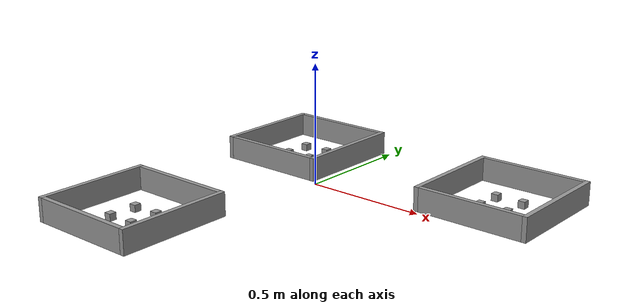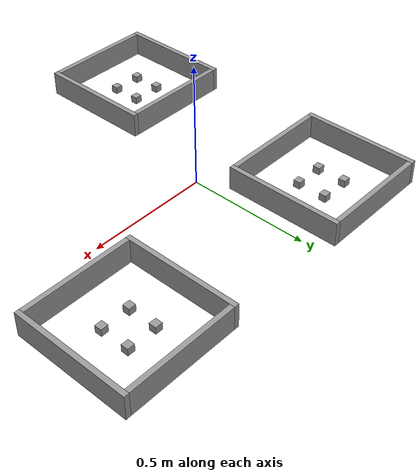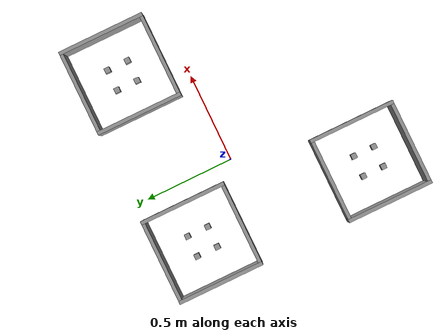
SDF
<sdf version="1.6">
 <model name="Catch_model">
  <link name="link_0">
   <inertial>
    <mass>1</mass>
    <inertia>
     <ixx>0.166667</ixx>
     <ixy>0</ixy>
     <ixz>0</ixz>
     <iyy>0.166667</iyy>
     <iyz>0</iyz>
     <izz>0.166667</izz>
    </inertia>
   </inertial>
   <pose>-0.568333 -0.666667 0.0175 0 -0 0</pose>
   <visual name="visual">
    <geometry><box><size>0.02 0.49 0.1</size></box></geometry>
    <material>
     <lighting>1</lighting>
     <script><uri>file://media/materials/scripts/gazebo.material</uri><name>Gazebo/Grey</name></script>
     <shader type="vertex"><normal_map>__default__</normal_map></shader>
     <ambient>0.3 0.3 0.3 1</ambient>
     <diffuse>0.7 0.7 0.7 1</diffuse>
     <specular>0.01 0.01 0.01 1</specular>
     <emissive>0 0 0 1</emissive>
    </material>
   </visual>
   <collision name="collision">
    <geometry><box><size>0.02 0.49 0.1</size></box></geometry>
    <surface>
     <friction>
      <ode><mu>1</mu><mu2>1</mu2><fdir1>0 0 0</fdir1><slip1>0</slip1><slip2>0</slip2></ode>
      <torsional>
       <coefficient>1</coefficient>
       <patch_radius>0</patch_radius>
       <surface_radius>0</surface_radius>
       <use_patch_radius>1</use_patch_radius>
       <ode><slip>0</slip></ode>
      </torsional>
     </friction>
     <bounce><restitution_coefficient>0</restitution_coefficient><threshold>1e+06</threshold></bounce>
     <contact>
      <collide_without_contact>0</collide_without_contact>
      <collide_without_contact_bitmask>1</collide_without_contact_bitmask>
      <collide_bitmask>1</collide_bitmask>
      <ode>
       <soft_cfm>0</soft_cfm>
       <soft_erp>0.2</soft_erp>
       <kp>1e+13</kp>
       <kd>1</kd>
       <max_vel>0.01</max_vel>
       <min_depth>0</min_depth>
      </ode>
      <bullet>
       <split_impulse>1</split_impulse>
       <split_impulse_penetration_threshold>-0.01</split_impulse_penetration_threshold>
       <soft_cfm>0</soft_cfm>
       <soft_erp>0.2</soft_erp>
       <kp>1e+13</kp>
       <kd>1</kd>
      </bullet>
     </contact>
    </surface>
   </collision>
  </link>
  <link name="link_0_clone">
   <inertial>
    <mass>1</mass>
    <inertia>
     <ixx>0.166667</ixx>
     <ixy>0</ixy>
     <ixz>0</ixz>
     <iyy>0.166667</iyy>
     <iyz>0</iyz>
     <izz>0.166667</izz>
    </inertia>
   </inertial>
   <pose>-0.098333 -0.666667 0.0175 0 -0 0</pose>
   <visual name="visual">
    <geometry><box><size>0.02 0.49 0.1</size></box></geometry>
    <material>
     <lighting>1</lighting>
     <script><uri>file://media/materials/scripts/gazebo.material</uri><name>Gazebo/Grey</name></script>
     <shader type="vertex"><normal_map>__default__</normal_map></shader>
     <ambient>0.3 0.3 0.3 1</ambient>
     <diffuse>0.7 0.7 0.7 1</diffuse>
     <specular>0.01 0.01 0.01 1</specular>
     <emissive>0 0 0 1</emissive>
    </material>
   </visual>
   <collision name="collision">
    <geometry><box><size>0.02 0.49 0.1</size></box></geometry>
    <surface>
     <friction>
      <ode><mu>1</mu><mu2>1</mu2><fdir1>0 0 0</fdir1><slip1>0</slip1><slip2>0</slip2></ode>
      <torsional>
       <coefficient>1</coefficient>
       <patch_radius>0</patch_radius>
       <surface_radius>0</surface_radius>
       <use_patch_radius>1</use_patch_radius>
       <ode><slip>0</slip></ode>
      </torsional>
     </friction>
     <bounce><restitution_coefficient>0</restitution_coefficient><threshold>1e+06</threshold></bounce>
     <contact>
      <collide_without_contact>0</collide_without_contact>
      <collide_without_contact_bitmask>1</collide_without_contact_bitmask>
      <collide_bitmask>1</collide_bitmask>
      <ode>
       <soft_cfm>0</soft_cfm>
       <soft_erp>0.2</soft_erp>
       <kp>1e+13</kp>
       <kd>1</kd>
       <max_vel>0.01</max_vel>
       <min_depth>0</min_depth>
      </ode>
      <bullet>
       <split_impulse>1</split_impulse>
       <split_impulse_penetration_threshold>-0.01</split_impulse_penetration_threshold>
       <soft_cfm>0</soft_cfm>
       <soft_erp>0.2</soft_erp>
       <kp>1e+13</kp>
       <kd>1</kd>
      </bullet>
     </contact>
    </surface>
   </collision>
  </link>
  <link name="link_0_clone_0">
   <inertial>
    <mass>1</mass>
    <inertia>
     <ixx>0.166667</ixx>
     <ixy>0</ixy>
     <ixz>0</ixz>
     <iyy>0.166667</iyy>
     <iyz>0</iyz>
     <izz>0.166667</izz>
    </inertia>
   </inertial>
   <pose>-0.098333 0.333333 0.0175 0 -0 0</pose>
   <visual name="visual">
    <geometry><box><size>0.02 0.49 0.1</size></box></geometry>
    <material>
     <lighting>1</lighting>
     <script><uri>file://media/materials/scripts/gazebo.material</uri><name>Gazebo/Grey</name></script>
     <shader type="vertex"><normal_map>__default__</normal_map></shader>
     <ambient>0.3 0.3 0.3 1</ambient>
     <diffuse>0.7 0.7 0.7 1</diffuse>
     <specular>0.01 0.01 0.01 1</specular>
     <emissive>0 0 0 1</emissive>
    </material>
   </visual>
   <collision name="collision">
    <geometry><box><size>0.02 0.49 0.1</size></box></geometry>
    <surface>
     <friction>
      <ode><mu>1</mu><mu2>1</mu2><fdir1>0 0 0</fdir1><slip1>0</slip1><slip2>0</slip2></ode>
      <torsional>
       <coefficient>1</coefficient>
       <patch_radius>0</patch_radius>
       <surface_radius>0</surface_radius>
       <use_patch_radius>1</use_patch_radius>
       <ode><slip>0</slip></ode>
      </torsional>
     </friction>
     <bounce><restitution_coefficient>0</restitution_coefficient><threshold>1e+06</threshold></bounce>
     <contact>
      <collide_without_contact>0</collide_without_contact>
      <collide_without_contact_bitmask>1</collide_without_contact_bitmask>
      <collide_bitmask>1</collide_bitmask>
      <ode>
       <soft_cfm>0</soft_cfm>
       <soft_erp>0.2</soft_erp>
       <kp>1e+13</kp>
       <kd>1</kd>
       <max_vel>0.01</max_vel>
       <min_depth>0</min_depth>
      </ode>
      <bullet>
       <split_impulse>1</split_impulse>
       <split_impulse_penetration_threshold>-0.01</split_impulse_penetration_threshold>
       <soft_cfm>0</soft_cfm>
       <soft_erp>0.2</soft_erp>
       <kp>1e+13</kp>
       <kd>1</kd>
      </bullet>
     </contact>
    </surface>
   </collision>
  </link>
  <link name="link_0_clone_1">
   <inertial>
    <mass>1</mass>
    <inertia>
     <ixx>0.166667</ixx>
     <ixy>0</ixy>
     <ixz>0</ixz>
     <iyy>0.166667</iyy>
     <iyz>0</iyz>
     <izz>0.166667</izz>
    </inertia>
   </inertial>
   <pose>-0.568333 0.333333 0.0175 0 -0 0</pose>
   <visual name="visual">
    <geometry><box><size>0.02 0.49 0.1</size></box></geometry>
    <material>
     <lighting>1</lighting>
     <script><uri>file://media/materials/scripts/gazebo.material</uri><name>Gazebo/Grey</name></script>
     <shader type="vertex"><normal_map>__default__</normal_map></shader>
     <ambient>0.3 0.3 0.3 1</ambient>
     <diffuse>0.7 0.7 0.7 1</diffuse>
     <specular>0.01 0.01 0.01 1</specular>
     <emissive>0 0 0 1</emissive>
    </material>
   </visual>
   <collision name="collision">
    <geometry><box><size>0.02 0.49 0.1</size></box></geometry>
    <surface>
     <friction>
      <ode><mu>1</mu><mu2>1</mu2><fdir1>0 0 0</fdir1><slip1>0</slip1><slip2>0</slip2></ode>
      <torsional>
       <coefficient>1</coefficient>
       <patch_radius>0</patch_radius>
       <surface_radius>0</surface_radius>
       <use_patch_radius>1</use_patch_radius>
       <ode><slip>0</slip></ode>
      </torsional>
     </friction>
     <bounce><restitution_coefficient>0</restitution_coefficient><threshold>1e+06</threshold></bounce>
     <contact>
      <collide_without_contact>0</collide_without_contact>
      <collide_without_contact_bitmask>1</collide_without_contact_bitmask>
      <collide_bitmask>1</collide_bitmask>
      <ode>
       <soft_cfm>0</soft_cfm>
       <soft_erp>0.2</soft_erp>
       <kp>1e+13</kp>
       <kd>1</kd>
       <max_vel>0.01</max_vel>
       <min_depth>0</min_depth>
      </ode>
      <bullet>
       <split_impulse>1</split_impulse>
       <split_impulse_penetration_threshold>-0.01</split_impulse_penetration_threshold>
       <soft_cfm>0</soft_cfm>
       <soft_erp>0.2</soft_erp>
       <kp>1e+13</kp>
       <kd>1</kd>
      </bullet>
     </contact>
    </surface>
   </collision>
  </link>
  <link name="link_0_clone_2">
   <inertial>
    <mass>1</mass>
    <inertia>
     <ixx>0.166667</ixx>
     <ixy>0</ixy>
     <ixz>0</ixz>
     <iyy>0.166667</iyy>
     <iyz>0</iyz>
     <izz>0.166667</izz>
    </inertia>
   </inertial>
   <pose>0.431667 0.333333 0.0175 0 -0 0</pose>
   <visual name="visual">
    <geometry><box><size>0.02 0.49 0.1</size></box></geometry>
    <material>
     <lighting>1</lighting>
     <script><uri>file://media/materials/scripts/gazebo.material</uri><name>Gazebo/Grey</name></script>
     <shader type="vertex"><normal_map>__default__</normal_map></shader>
     <ambient>0.3 0.3 0.3 1</ambient>
     <diffuse>0.7 0.7 0.7 1</diffuse>
     <specular>0.01 0.01 0.01 1</specular>
     <emissive>0 0 0 1</emissive>
    </material>
   </visual>
   <collision name="collision">
    <geometry><box><size>0.02 0.49 0.1</size></box></geometry>
    <surface>
     <friction>
      <ode><mu>1</mu><mu2>1</mu2><fdir1>0 0 0</fdir1><slip1>0</slip1><slip2>0</slip2></ode>
      <torsional>
       <coefficient>1</coefficient>
       <patch_radius>0</patch_radius>
       <surface_radius>0</surface_radius>
       <use_patch_radius>1</use_patch_radius>
       <ode><slip>0</slip></ode>
      </torsional>
     </friction>
     <bounce><restitution_coefficient>0</restitution_coefficient><threshold>1e+06</threshold></bounce>
     <contact>
      <collide_without_contact>0</collide_without_contact>
      <collide_without_contact_bitmask>1</collide_without_contact_bitmask>
      <collide_bitmask>1</collide_bitmask>
      <ode>
       <soft_cfm>0</soft_cfm>
       <soft_erp>0.2</soft_erp>
       <kp>1e+13</kp>
       <kd>1</kd>
       <max_vel>0.01</max_vel>
       <min_depth>0</min_depth>
      </ode>
      <bullet>
       <split_impulse>1</split_impulse>
       <split_impulse_penetration_threshold>-0.01</split_impulse_penetration_threshold>
       <soft_cfm>0</soft_cfm>
       <soft_erp>0.2</soft_erp>
       <kp>1e+13</kp>
       <kd>1</kd>
      </bullet>
     </contact>
    </surface>
   </collision>
  </link>
  <link name="link_0_clone_3">
   <inertial>
    <mass>1</mass>
    <inertia>
     <ixx>0.166667</ixx>
     <ixy>0</ixy>
     <ixz>0</ixz>
     <iyy>0.166667</iyy>
     <iyz>0</iyz>
     <izz>0.166667</izz>
    </inertia>
   </inertial>
   <pose>0.901667 0.333333 0.0175 0 -0 0</pose>
   <visual name="visual">
    <geometry><box><size>0.02 0.49 0.1</size></box></geometry>
    <material>
     <lighting>1</lighting>
     <script><uri>file://media/materials/scripts/gazebo.material</uri><name>Gazebo/Grey</name></script>
     <shader type="vertex"><normal_map>__default__</normal_map></shader>
     <ambient>0.3 0.3 0.3 1</ambient>
     <diffuse>0.7 0.7 0.7 1</diffuse>
     <specular>0.01 0.01 0.01 1</specular>
     <emissive>0 0 0 1</emissive>
    </material>
   </visual>
   <collision name="collision">
    <geometry><box><size>0.02 0.49 0.1</size></box></geometry>
    <surface>
     <friction>
      <ode><mu>1</mu><mu2>1</mu2><fdir1>0 0 0</fdir1><slip1>0</slip1><slip2>0</slip2></ode>
      <torsional>
       <coefficient>1</coefficient>
       <patch_radius>0</patch_radius>
       <surface_radius>0</surface_radius>
       <use_patch_radius>1</use_patch_radius>
       <ode><slip>0</slip></ode>
      </torsional>
     </friction>
     <bounce><restitution_coefficient>0</restitution_coefficient><threshold>1e+06</threshold></bounce>
     <contact>
      <collide_without_contact>0</collide_without_contact>
      <collide_without_contact_bitmask>1</collide_without_contact_bitmask>
      <collide_bitmask>1</collide_bitmask>
      <ode>
       <soft_cfm>0</soft_cfm>
       <soft_erp>0.2</soft_erp>
       <kp>1e+13</kp>
       <kd>1</kd>
       <max_vel>0.01</max_vel>
       <min_depth>0</min_depth>
      </ode>
      <bullet>
       <split_impulse>1</split_impulse>
       <split_impulse_penetration_threshold>-0.01</split_impulse_penetration_threshold>
       <soft_cfm>0</soft_cfm>
       <soft_erp>0.2</soft_erp>
       <kp>1e+13</kp>
       <kd>1</kd>
      </bullet>
     </contact>
    </surface>
   </collision>
  </link>
  <link name="link_1">
   <inertial>
    <mass>1</mass>
    <inertia>
     <ixx>0.166667</ixx>
     <ixy>0</ixy>
     <ixz>0</ixz>
     <iyy>0.166667</iyy>
     <iyz>0</iyz>
     <izz>0.166667</izz>
    </inertia>
   </inertial>
   <pose>-0.333333 -0.901667 0.0175 0 -0 0</pose>
   <visual name="visual">
    <geometry><box><size>0.45 0.02 0.1</size></box></geometry>
    <material>
     <lighting>1</lighting>
     <script><uri>file://media/materials/scripts/gazebo.material</uri><name>Gazebo/Grey</name></script>
     <shader type="vertex"><normal_map>__default__</normal_map></shader>
     <ambient>0.3 0.3 0.3 1</ambient>
     <diffuse>0.7 0.7 0.7 1</diffuse>
     <specular>0.01 0.01 0.01 1</specular>
     <emissive>0 0 0 1</emissive>
    </material>
   </visual>
   <collision name="collision">
    <geometry><box><size>0.45 0.02 0.1</size></box></geometry>
    <surface>
     <friction>
      <ode><mu>1</mu><mu2>1</mu2><fdir1>0 0 0</fdir1><slip1>0</slip1><slip2>0</slip2></ode>
      <torsional>
       <coefficient>1</coefficient>
       <patch_radius>0</patch_radius>
       <surface_radius>0</surface_radius>
       <use_patch_radius>1</use_patch_radius>
       <ode><slip>0</slip></ode>
      </torsional>
     </friction>
     <bounce><restitution_coefficient>0</restitution_coefficient><threshold>1e+06</threshold></bounce>
     <contact>
      <collide_without_contact>0</collide_without_contact>
      <collide_without_contact_bitmask>1</collide_without_contact_bitmask>
      <collide_bitmask>1</collide_bitmask>
      <ode>
       <soft_cfm>0</soft_cfm>
       <soft_erp>0.2</soft_erp>
       <kp>1e+13</kp>
       <kd>1</kd>
       <max_vel>0.01</max_vel>
       <min_depth>0</min_depth>
      </ode>
      <bullet>
       <split_impulse>1</split_impulse>
       <split_impulse_penetration_threshold>-0.01</split_impulse_penetration_threshold>
       <soft_cfm>0</soft_cfm>
       <soft_erp>0.2</soft_erp>
       <kp>1e+13</kp>
       <kd>1</kd>
      </bullet>
     </contact>
    </surface>
   </collision>
  </link>
  <link name="link_1_clone">
   <inertial>
    <mass>1</mass>
    <inertia>
     <ixx>0.166667</ixx>
     <ixy>0</ixy>
     <ixz>0</ixz>
     <iyy>0.166667</iyy>
     <iyz>0</iyz>
     <izz>0.166667</izz>
    </inertia>
   </inertial>
   <pose>-0.333333 -0.431667 0.0175 0 -0 0</pose>
   <visual name="visual">
    <geometry><box><size>0.45 0.02 0.1</size></box></geometry>
    <material>
     <lighting>1</lighting>
     <script><uri>file://media/materials/scripts/gazebo.material</uri><name>Gazebo/Grey</name></script>
     <shader type="vertex"><normal_map>__default__</normal_map></shader>
     <ambient>0.3 0.3 0.3 1</ambient>
     <diffuse>0.7 0.7 0.7 1</diffuse>
     <specular>0.01 0.01 0.01 1</specular>
     <emissive>0 0 0 1</emissive>
    </material>
   </visual>
   <collision name="collision">
    <geometry><box><size>0.45 0.02 0.1</size></box></geometry>
    <surface>
     <friction>
      <ode><mu>1</mu><mu2>1</mu2><fdir1>0 0 0</fdir1><slip1>0</slip1><slip2>0</slip2></ode>
      <torsional>
       <coefficient>1</coefficient>
       <patch_radius>0</patch_radius>
       <surface_radius>0</surface_radius>
       <use_patch_radius>1</use_patch_radius>
       <ode><slip>0</slip></ode>
      </torsional>
     </friction>
     <bounce><restitution_coefficient>0</restitution_coefficient><threshold>1e+06</threshold></bounce>
     <contact>
      <collide_without_contact>0</collide_without_contact>
      <collide_without_contact_bitmask>1</collide_without_contact_bitmask>
      <collide_bitmask>1</collide_bitmask>
      <ode>
       <soft_cfm>0</soft_cfm>
       <soft_erp>0.2</soft_erp>
       <kp>1e+13</kp>
       <kd>1</kd>
       <max_vel>0.01</max_vel>
       <min_depth>0</min_depth>
      </ode>
      <bullet>
       <split_impulse>1</split_impulse>
       <split_impulse_penetration_threshold>-0.01</split_impulse_penetration_threshold>
       <soft_cfm>0</soft_cfm>
       <soft_erp>0.2</soft_erp>
       <kp>1e+13</kp>
       <kd>1</kd>
      </bullet>
     </contact>
    </surface>
   </collision>
  </link>
  <link name="link_1_clone_0">
   <inertial>
    <mass>1</mass>
    <inertia>
     <ixx>0.166667</ixx>
     <ixy>0</ixy>
     <ixz>0</ixz>
     <iyy>0.166667</iyy>
     <iyz>0</iyz>
     <izz>0.166667</izz>
    </inertia>
   </inertial>
   <pose>-0.333333 0.098333 0.0175 0 -0 0</pose>
   <visual name="visual">
    <geometry><box><size>0.45 0.02 0.1</size></box></geometry>
    <material>
     <lighting>1</lighting>
     <script><uri>file://media/materials/scripts/gazebo.material</uri><name>Gazebo/Grey</name></script>
     <shader type="vertex"><normal_map>__default__</normal_map></shader>
     <ambient>0.3 0.3 0.3 1</ambient>
     <diffuse>0.7 0.7 0.7 1</diffuse>
     <specular>0.01 0.01 0.01 1</specular>
     <emissive>0 0 0 1</emissive>
    </material>
   </visual>
   <collision name="collision">
    <geometry><box><size>0.45 0.02 0.1</size></box></geometry>
    <surface>
     <friction>
      <ode><mu>1</mu><mu2>1</mu2><fdir1>0 0 0</fdir1><slip1>0</slip1><slip2>0</slip2></ode>
      <torsional>
       <coefficient>1</coefficient>
       <patch_radius>0</patch_radius>
       <surface_radius>0</surface_radius>
       <use_patch_radius>1</use_patch_radius>
       <ode><slip>0</slip></ode>
      </torsional>
     </friction>
     <bounce><restitution_coefficient>0</restitution_coefficient><threshold>1e+06</threshold></bounce>
     <contact>
      <collide_without_contact>0</collide_without_contact>
      <collide_without_contact_bitmask>1</collide_without_contact_bitmask>
      <collide_bitmask>1</collide_bitmask>
      <ode>
       <soft_cfm>0</soft_cfm>
       <soft_erp>0.2</soft_erp>
       <kp>1e+13</kp>
       <kd>1</kd>
       <max_vel>0.01</max_vel>
       <min_depth>0</min_depth>
      </ode>
      <bullet>
       <split_impulse>1</split_impulse>
       <split_impulse_penetration_threshold>-0.01</split_impulse_penetration_threshold>
       <soft_cfm>0</soft_cfm>
       <soft_erp>0.2</soft_erp>
       <kp>1e+13</kp>
       <kd>1</kd>
      </bullet>
     </contact>
    </surface>
   </collision>
  </link>
  <link name="link_1_clone_1">
   <inertial>
    <mass>1</mass>
    <inertia>
     <ixx>0.166667</ixx>
     <ixy>0</ixy>
     <ixz>0</ixz>
     <iyy>0.166667</iyy>
     <iyz>0</iyz>
     <izz>0.166667</izz>
    </inertia>
   </inertial>
   <pose>-0.333333 0.568333 0.0175 0 -0 0</pose>
   <visual name="visual">
    <geometry><box><size>0.45 0.02 0.1</size></box></geometry>
    <material>
     <lighting>1</lighting>
     <script><uri>file://media/materials/scripts/gazebo.material</uri><name>Gazebo/Grey</name></script>
     <shader type="vertex"><normal_map>__default__</normal_map></shader>
     <ambient>0.3 0.3 0.3 1</ambient>
     <diffuse>0.7 0.7 0.7 1</diffuse>
     <specular>0.01 0.01 0.01 1</specular>
     <emissive>0 0 0 1</emissive>
    </material>
   </visual>
   <collision name="collision">
    <geometry><box><size>0.45 0.02 0.1</size></box></geometry>
    <surface>
     <friction>
      <ode><mu>1</mu><mu2>1</mu2><fdir1>0 0 0</fdir1><slip1>0</slip1><slip2>0</slip2></ode>
      <torsional>
       <coefficient>1</coefficient>
       <patch_radius>0</patch_radius>
       <surface_radius>0</surface_radius>
       <use_patch_radius>1</use_patch_radius>
       <ode><slip>0</slip></ode>
      </torsional>
     </friction>
     <bounce><restitution_coefficient>0</restitution_coefficient><threshold>1e+06</threshold></bounce>
     <contact>
      <collide_without_contact>0</collide_without_contact>
      <collide_without_contact_bitmask>1</collide_without_contact_bitmask>
      <collide_bitmask>1</collide_bitmask>
      <ode>
       <soft_cfm>0</soft_cfm>
       <soft_erp>0.2</soft_erp>
       <kp>1e+13</kp>
       <kd>1</kd>
       <max_vel>0.01</max_vel>
       <min_depth>0</min_depth>
      </ode>
      <bullet>
       <split_impulse>1</split_impulse>
       <split_impulse_penetration_threshold>-0.01</split_impulse_penetration_threshold>
       <soft_cfm>0</soft_cfm>
       <soft_erp>0.2</soft_erp>
       <kp>1e+13</kp>
       <kd>1</kd>
      </bullet>
     </contact>
    </surface>
   </collision>
  </link>
  <link name="link_1_clone_2">
   <inertial>
    <mass>1</mass>
    <inertia>
     <ixx>0.166667</ixx>
     <ixy>0</ixy>
     <ixz>0</ixz>
     <iyy>0.166667</iyy>
     <iyz>0</iyz>
     <izz>0.166667</izz>
    </inertia>
   </inertial>
   <pose>0.666667 0.098333 0.0175 0 -0 0</pose>
   <visual name="visual">
    <geometry><box><size>0.45 0.02 0.1</size></box></geometry>
    <material>
     <lighting>1</lighting>
     <script><uri>file://media/materials/scripts/gazebo.material</uri><name>Gazebo/Grey</name></script>
     <shader type="vertex"><normal_map>__default__</normal_map></shader>
     <ambient>0.3 0.3 0.3 1</ambient>
     <diffuse>0.7 0.7 0.7 1</diffuse>
     <specular>0.01 0.01 0.01 1</specular>
     <emissive>0 0 0 1</emissive>
    </material>
   </visual>
   <collision name="collision">
    <geometry><box><size>0.45 0.02 0.1</size></box></geometry>
    <surface>
     <friction>
      <ode><mu>1</mu><mu2>1</mu2><fdir1>0 0 0</fdir1><slip1>0</slip1><slip2>0</slip2></ode>
      <torsional>
       <coefficient>1</coefficient>
       <patch_radius>0</patch_radius>
       <surface_radius>0</surface_radius>
       <use_patch_radius>1</use_patch_radius>
       <ode><slip>0</slip></ode>
      </torsional>
     </friction>
     <bounce><restitution_coefficient>0</restitution_coefficient><threshold>1e+06</threshold></bounce>
     <contact>
      <collide_without_contact>0</collide_without_contact>
      <collide_without_contact_bitmask>1</collide_without_contact_bitmask>
      <collide_bitmask>1</collide_bitmask>
      <ode>
       <soft_cfm>0</soft_cfm>
       <soft_erp>0.2</soft_erp>
       <kp>1e+13</kp>
       <kd>1</kd>
       <max_vel>0.01</max_vel>
       <min_depth>0</min_depth>
      </ode>
      <bullet>
       <split_impulse>1</split_impulse>
       <split_impulse_penetration_threshold>-0.01</split_impulse_penetration_threshold>
       <soft_cfm>0</soft_cfm>
       <soft_erp>0.2</soft_erp>
       <kp>1e+13</kp>
       <kd>1</kd>
      </bullet>
     </contact>
    </surface>
   </collision>
  </link>
  <link name="link_1_clone_3">
   <inertial>
    <mass>1</mass>
    <inertia>
     <ixx>0.166667</ixx>
     <ixy>0</ixy>
     <ixz>0</ixz>
     <iyy>0.166667</iyy>
     <iyz>0</iyz>
     <izz>0.166667</izz>
    </inertia>
   </inertial>
   <pose>0.666667 0.568333 0.0175 0 -0 0</pose>
   <visual name="visual">
    <geometry><box><size>0.45 0.02 0.1</size></box></geometry>
    <material>
     <lighting>1</lighting>
     <script><uri>file://media/materials/scripts/gazebo.material</uri><name>Gazebo/Grey</name></script>
     <shader type="vertex"><normal_map>__default__</normal_map></shader>
     <ambient>0.3 0.3 0.3 1</ambient>
     <diffuse>0.7 0.7 0.7 1</diffuse>
     <specular>0.01 0.01 0.01 1</specular>
     <emissive>0 0 0 1</emissive>
    </material>
   </visual>
   <collision name="collision">
    <geometry><box><size>0.45 0.02 0.1</size></box></geometry>
    <surface>
     <friction>
      <ode><mu>1</mu><mu2>1</mu2><fdir1>0 0 0</fdir1><slip1>0</slip1><slip2>0</slip2></ode>
      <torsional>
       <coefficient>1</coefficient>
       <patch_radius>0</patch_radius>
       <surface_radius>0</surface_radius>
       <use_patch_radius>1</use_patch_radius>
       <ode><slip>0</slip></ode>
      </torsional>
     </friction>
     <bounce><restitution_coefficient>0</restitution_coefficient><threshold>1e+06</threshold></bounce>
     <contact>
      <collide_without_contact>0</collide_without_contact>
      <collide_without_contact_bitmask>1</collide_without_contact_bitmask>
      <collide_bitmask>1</collide_bitmask>
      <ode>
       <soft_cfm>0</soft_cfm>
       <soft_erp>0.2</soft_erp>
       <kp>1e+13</kp>
       <kd>1</kd>
       <max_vel>0.01</max_vel>
       <min_depth>0</min_depth>
      </ode>
      <bullet>
       <split_impulse>1</split_impulse>
       <split_impulse_penetration_threshold>-0.01</split_impulse_penetration_threshold>
       <soft_cfm>0</soft_cfm>
       <soft_erp>0.2</soft_erp>
       <kp>1e+13</kp>
       <kd>1</kd>
      </bullet>
     </contact>
    </surface>
   </collision>
  </link>
  <link name="link_2">
   <inertial>
    <mass>1</mass>
    <inertia>
     <ixx>0.166667</ixx>
     <ixy>0</ixy>
     <ixz>0</ixz>
     <iyy>0.166667</iyy>
     <iyz>0</iyz>
     <izz>0.166667</izz>
    </inertia>
   </inertial>
   <pose>-0.273333 -0.606667 -0.0175 0 -0 0</pose>
   <visual name="visual">
    <geometry><box><size>0.03 0.03 0.03</size></box></geometry>
    <material>
     <lighting>1</lighting>
     <script><uri>file://media/materials/scripts/gazebo.material</uri><name>Gazebo/Grey</name></script>
     <shader type="vertex"><normal_map>__default__</normal_map></shader>
     <ambient>0.3 0.3 0.3 1</ambient>
     <diffuse>0.7 0.7 0.7 1</diffuse>
     <specular>0.01 0.01 0.01 1</specular>
     <emissive>0 0 0 1</emissive>
    </material>
   </visual>
   <collision name="collision">
    <geometry><box><size>0.03 0.03 0.03</size></box></geometry>
    <surface>
     <friction>
      <ode><mu>1</mu><mu2>1</mu2><fdir1>0 0 0</fdir1><slip1>0</slip1><slip2>0</slip2></ode>
      <torsional>
       <coefficient>1</coefficient>
       <patch_radius>0</patch_radius>
       <surface_radius>0</surface_radius>
       <use_patch_radius>1</use_patch_radius>
       <ode><slip>0</slip></ode>
      </torsional>
     </friction>
     <bounce><restitution_coefficient>0</restitution_coefficient><threshold>1e+06</threshold></bounce>
     <contact>
      <collide_without_contact>0</collide_without_contact>
      <collide_without_contact_bitmask>1</collide_without_contact_bitmask>
      <collide_bitmask>1</collide_bitmask>
      <ode>
       <soft_cfm>0</soft_cfm>
       <soft_erp>0.2</soft_erp>
       <kp>1e+13</kp>
       <kd>1</kd>
       <max_vel>0.01</max_vel>
       <min_depth>0</min_depth>
      </ode>
      <bullet>
       <split_impulse>1</split_impulse>
       <split_impulse_penetration_threshold>-0.01</split_impulse_penetration_threshold>
       <soft_cfm>0</soft_cfm>
       <soft_erp>0.2</soft_erp>
       <kp>1e+13</kp>
       <kd>1</kd>
      </bullet>
     </contact>
    </surface>
   </collision>
  </link>
  <link name="link_2_clone">
   <inertial>
    <mass>1</mass>
    <inertia>
     <ixx>0.166667</ixx>
     <ixy>0</ixy>
     <ixz>0</ixz>
     <iyy>0.166667</iyy>
     <iyz>0</iyz>
     <izz>0.166667</izz>
    </inertia>
   </inertial>
   <pose>-0.273333 -0.726667 -0.0175 0 -0 0</pose>
   <visual name="visual">
    <geometry><box><size>0.03 0.03 0.03</size></box></geometry>
    <material>
     <lighting>1</lighting>
     <script><uri>file://media/materials/scripts/gazebo.material</uri><name>Gazebo/Grey</name></script>
     <shader type="vertex"><normal_map>__default__</normal_map></shader>
     <ambient>0.3 0.3 0.3 1</ambient>
     <diffuse>0.7 0.7 0.7 1</diffuse>
     <specular>0.01 0.01 0.01 1</specular>
     <emissive>0 0 0 1</emissive>
    </material>
   </visual>
   <collision name="collision">
    <geometry><box><size>0.03 0.03 0.03</size></box></geometry>
    <surface>
     <friction>
      <ode><mu>1</mu><mu2>1</mu2><fdir1>0 0 0</fdir1><slip1>0</slip1><slip2>0</slip2></ode>
      <torsional>
       <coefficient>1</coefficient>
       <patch_radius>0</patch_radius>
       <surface_radius>0</surface_radius>
       <use_patch_radius>1</use_patch_radius>
       <ode><slip>0</slip></ode>
      </torsional>
     </friction>
     <bounce><restitution_coefficient>0</restitution_coefficient><threshold>1e+06</threshold></bounce>
     <contact>
      <collide_without_contact>0</collide_without_contact>
      <collide_without_contact_bitmask>1</collide_without_contact_bitmask>
      <collide_bitmask>1</collide_bitmask>
      <ode>
       <soft_cfm>0</soft_cfm>
       <soft_erp>0.2</soft_erp>
       <kp>1e+13</kp>
       <kd>1</kd>
       <max_vel>0.01</max_vel>
       <min_depth>0</min_depth>
      </ode>
      <bullet>
       <split_impulse>1</split_impulse>
       <split_impulse_penetration_threshold>-0.01</split_impulse_penetration_threshold>
       <soft_cfm>0</soft_cfm>
       <soft_erp>0.2</soft_erp>
       <kp>1e+13</kp>
       <kd>1</kd>
      </bullet>
     </contact>
    </surface>
   </collision>
  </link>
  <link name="link_2_clone_0">
   <inertial>
    <mass>1</mass>
    <inertia>
     <ixx>0.166667</ixx>
     <ixy>0</ixy>
     <ixz>0</ixz>
     <iyy>0.166667</iyy>
     <iyz>0</iyz>
     <izz>0.166667</izz>
    </inertia>
   </inertial>
   <pose>-0.393333 -0.606667 -0.0175 0 -0 0</pose>
   <visual name="visual">
    <geometry><box><size>0.03 0.03 0.03</size></box></geometry>
    <material>
     <lighting>1</lighting>
     <script><uri>file://media/materials/scripts/gazebo.material</uri><name>Gazebo/Grey</name></script>
     <shader type="vertex"><normal_map>__default__</normal_map></shader>
     <ambient>0.3 0.3 0.3 1</ambient>
     <diffuse>0.7 0.7 0.7 1</diffuse>
     <specular>0.01 0.01 0.01 1</specular>
     <emissive>0 0 0 1</emissive>
    </material>
   </visual>
   <collision name="collision">
    <geometry><box><size>0.03 0.03 0.03</size></box></geometry>
    <surface>
     <friction>
      <ode><mu>1</mu><mu2>1</mu2><fdir1>0 0 0</fdir1><slip1>0</slip1><slip2>0</slip2></ode>
      <torsional>
       <coefficient>1</coefficient>
       <patch_radius>0</patch_radius>
       <surface_radius>0</surface_radius>
       <use_patch_radius>1</use_patch_radius>
       <ode><slip>0</slip></ode>
      </torsional>
     </friction>
     <bounce><restitution_coefficient>0</restitution_coefficient><threshold>1e+06</threshold></bounce>
     <contact>
      <collide_without_contact>0</collide_without_contact>
      <collide_without_contact_bitmask>1</collide_without_contact_bitmask>
      <collide_bitmask>1</collide_bitmask>
      <ode>
       <soft_cfm>0</soft_cfm>
       <soft_erp>0.2</soft_erp>
       <kp>1e+13</kp>
       <kd>1</kd>
       <max_vel>0.01</max_vel>
       <min_depth>0</min_depth>
      </ode>
      <bullet>
       <split_impulse>1</split_impulse>
       <split_impulse_penetration_threshold>-0.01</split_impulse_penetration_threshold>
       <soft_cfm>0</soft_cfm>
       <soft_erp>0.2</soft_erp>
       <kp>1e+13</kp>
       <kd>1</kd>
      </bullet>
     </contact>
    </surface>
   </collision>
  </link>
  <link name="link_2_clone_1">
   <inertial>
    <mass>1</mass>
    <inertia>
     <ixx>0.166667</ixx>
     <ixy>0</ixy>
     <ixz>0</ixz>
     <iyy>0.166667</iyy>
     <iyz>0</iyz>
     <izz>0.166667</izz>
    </inertia>
   </inertial>
   <pose>-0.393333 -0.726667 -0.0175 0 -0 0</pose>
   <visual name="visual">
    <geometry><box><size>0.03 0.03 0.03</size></box></geometry>
    <material>
     <lighting>1</lighting>
     <script><uri>file://media/materials/scripts/gazebo.material</uri><name>Gazebo/Grey</name></script>
     <shader type="vertex"><normal_map>__default__</normal_map></shader>
     <ambient>0.3 0.3 0.3 1</ambient>
     <diffuse>0.7 0.7 0.7 1</diffuse>
     <specular>0.01 0.01 0.01 1</specular>
     <emissive>0 0 0 1</emissive>
    </material>
   </visual>
   <collision name="collision">
    <geometry><box><size>0.03 0.03 0.03</size></box></geometry>
    <surface>
     <friction>
      <ode><mu>1</mu><mu2>1</mu2><fdir1>0 0 0</fdir1><slip1>0</slip1><slip2>0</slip2></ode>
      <torsional>
       <coefficient>1</coefficient>
       <patch_radius>0</patch_radius>
       <surface_radius>0</surface_radius>
       <use_patch_radius>1</use_patch_radius>
       <ode><slip>0</slip></ode>
      </torsional>
     </friction>
     <bounce><restitution_coefficient>0</restitution_coefficient><threshold>1e+06</threshold></bounce>
     <contact>
      <collide_without_contact>0</collide_without_contact>
      <collide_without_contact_bitmask>1</collide_without_contact_bitmask>
      <collide_bitmask>1</collide_bitmask>
      <ode>
       <soft_cfm>0</soft_cfm>
       <soft_erp>0.2</soft_erp>
       <kp>1e+13</kp>
       <kd>1</kd>
       <max_vel>0.01</max_vel>
       <min_depth>0</min_depth>
      </ode>
      <bullet>
       <split_impulse>1</split_impulse>
       <split_impulse_penetration_threshold>-0.01</split_impulse_penetration_threshold>
       <soft_cfm>0</soft_cfm>
       <soft_erp>0.2</soft_erp>
       <kp>1e+13</kp>
       <kd>1</kd>
      </bullet>
     </contact>
    </surface>
   </collision>
  </link>
  <link name="link_2_clone_2">
   <inertial>
    <mass>1</mass>
    <inertia>
     <ixx>0.166667</ixx>
     <ixy>0</ixy>
     <ixz>0</ixz>
     <iyy>0.166667</iyy>
     <iyz>0</iyz>
     <izz>0.166667</izz>
    </inertia>
   </inertial>
   <pose>-0.273333 0.273333 -0.0175 0 -0 0</pose>
   <visual name="visual">
    <geometry><box><size>0.03 0.03 0.03</size></box></geometry>
    <material>
     <lighting>1</lighting>
     <script><uri>file://media/materials/scripts/gazebo.material</uri><name>Gazebo/Grey</name></script>
     <shader type="vertex"><normal_map>__default__</normal_map></shader>
     <ambient>0.3 0.3 0.3 1</ambient>
     <diffuse>0.7 0.7 0.7 1</diffuse>
     <specular>0.01 0.01 0.01 1</specular>
     <emissive>0 0 0 1</emissive>
    </material>
   </visual>
   <collision name="collision">
    <geometry><box><size>0.03 0.03 0.03</size></box></geometry>
    <surface>
     <friction>
      <ode><mu>1</mu><mu2>1</mu2><fdir1>0 0 0</fdir1><slip1>0</slip1><slip2>0</slip2></ode>
      <torsional>
       <coefficient>1</coefficient>
       <patch_radius>0</patch_radius>
       <surface_radius>0</surface_radius>
       <use_patch_radius>1</use_patch_radius>
       <ode><slip>0</slip></ode>
      </torsional>
     </friction>
     <bounce><restitution_coefficient>0</restitution_coefficient><threshold>1e+06</threshold></bounce>
     <contact>
      <collide_without_contact>0</collide_without_contact>
      <collide_without_contact_bitmask>1</collide_without_contact_bitmask>
      <collide_bitmask>1</collide_bitmask>
      <ode>
       <soft_cfm>0</soft_cfm>
       <soft_erp>0.2</soft_erp>
       <kp>1e+13</kp>
       <kd>1</kd>
       <max_vel>0.01</max_vel>
       <min_depth>0</min_depth>
      </ode>
      <bullet>
       <split_impulse>1</split_impulse>
       <split_impulse_penetration_threshold>-0.01</split_impulse_penetration_threshold>
       <soft_cfm>0</soft_cfm>
       <soft_erp>0.2</soft_erp>
       <kp>1e+13</kp>
       <kd>1</kd>
      </bullet>
     </contact>
    </surface>
   </collision>
  </link>
  <link name="link_2_clone_3">
   <inertial>
    <mass>1</mass>
    <inertia>
     <ixx>0.166667</ixx>
     <ixy>0</ixy>
     <ixz>0</ixz>
     <iyy>0.166667</iyy>
     <iyz>0</iyz>
     <izz>0.166667</izz>
    </inertia>
   </inertial>
   <pose>-0.273333 0.393333 -0.0175 0 -0 0</pose>
   <visual name="visual">
    <geometry><box><size>0.03 0.03 0.03</size></box></geometry>
    <material>
     <lighting>1</lighting>
     <script><uri>file://media/materials/scripts/gazebo.material</uri><name>Gazebo/Grey</name></script>
     <shader type="vertex"><normal_map>__default__</normal_map></shader>
     <ambient>0.3 0.3 0.3 1</ambient>
     <diffuse>0.7 0.7 0.7 1</diffuse>
     <specular>0.01 0.01 0.01 1</specular>
     <emissive>0 0 0 1</emissive>
    </material>
   </visual>
   <collision name="collision">
    <geometry><box><size>0.03 0.03 0.03</size></box></geometry>
    <surface>
     <friction>
      <ode><mu>1</mu><mu2>1</mu2><fdir1>0 0 0</fdir1><slip1>0</slip1><slip2>0</slip2></ode>
      <torsional>
       <coefficient>1</coefficient>
       <patch_radius>0</patch_radius>
       <surface_radius>0</surface_radius>
       <use_patch_radius>1</use_patch_radius>
       <ode><slip>0</slip></ode>
      </torsional>
     </friction>
     <bounce><restitution_coefficient>0</restitution_coefficient><threshold>1e+06</threshold></bounce>
     <contact>
      <collide_without_contact>0</collide_without_contact>
      <collide_without_contact_bitmask>1</collide_without_contact_bitmask>
      <collide_bitmask>1</collide_bitmask>
      <ode>
       <soft_cfm>0</soft_cfm>
       <soft_erp>0.2</soft_erp>
       <kp>1e+13</kp>
       <kd>1</kd>
       <max_vel>0.01</max_vel>
       <min_depth>0</min_depth>
      </ode>
      <bullet>
       <split_impulse>1</split_impulse>
       <split_impulse_penetration_threshold>-0.01</split_impulse_penetration_threshold>
       <soft_cfm>0</soft_cfm>
       <soft_erp>0.2</soft_erp>
       <kp>1e+13</kp>
       <kd>1</kd>
      </bullet>
     </contact>
    </surface>
   </collision>
  </link>
  <link name="link_2_clone_4">
   <inertial>
    <mass>1</mass>
    <inertia>
     <ixx>0.166667</ixx>
     <ixy>0</ixy>
     <ixz>0</ixz>
     <iyy>0.166667</iyy>
     <iyz>0</iyz>
     <izz>0.166667</izz>
    </inertia>
   </inertial>
   <pose>-0.393333 0.273333 -0.0175 0 -0 0</pose>
   <visual name="visual">
    <geometry><box><size>0.03 0.03 0.03</size></box></geometry>
    <material>
     <lighting>1</lighting>
     <script><uri>file://media/materials/scripts/gazebo.material</uri><name>Gazebo/Grey</name></script>
     <shader type="vertex"><normal_map>__default__</normal_map></shader>
     <ambient>0.3 0.3 0.3 1</ambient>
     <diffuse>0.7 0.7 0.7 1</diffuse>
     <specular>0.01 0.01 0.01 1</specular>
     <emissive>0 0 0 1</emissive>
    </material>
   </visual>
   <collision name="collision">
    <geometry><box><size>0.03 0.03 0.03</size></box></geometry>
    <surface>
     <friction>
      <ode><mu>1</mu><mu2>1</mu2><fdir1>0 0 0</fdir1><slip1>0</slip1><slip2>0</slip2></ode>
      <torsional>
       <coefficient>1</coefficient>
       <patch_radius>0</patch_radius>
       <surface_radius>0</surface_radius>
       <use_patch_radius>1</use_patch_radius>
       <ode><slip>0</slip></ode>
      </torsional>
     </friction>
     <bounce><restitution_coefficient>0</restitution_coefficient><threshold>1e+06</threshold></bounce>
     <contact>
      <collide_without_contact>0</collide_without_contact>
      <collide_without_contact_bitmask>1</collide_without_contact_bitmask>
      <collide_bitmask>1</collide_bitmask>
      <ode>
       <soft_cfm>0</soft_cfm>
       <soft_erp>0.2</soft_erp>
       <kp>1e+13</kp>
       <kd>1</kd>
       <max_vel>0.01</max_vel>
       <min_depth>0</min_depth>
      </ode>
      <bullet>
       <split_impulse>1</split_impulse>
       <split_impulse_penetration_threshold>-0.01</split_impulse_penetration_threshold>
       <soft_cfm>0</soft_cfm>
       <soft_erp>0.2</soft_erp>
       <kp>1e+13</kp>
       <kd>1</kd>
      </bullet>
     </contact>
    </surface>
   </collision>
  </link>
  <link name="link_2_clone_5">
   <inertial>
    <mass>1</mass>
    <inertia>
     <ixx>0.166667</ixx>
     <ixy>0</ixy>
     <ixz>0</ixz>
     <iyy>0.166667</iyy>
     <iyz>0</iyz>
     <izz>0.166667</izz>
    </inertia>
   </inertial>
   <pose>-0.393333 0.393333 -0.0175 0 -0 0</pose>
   <visual name="visual">
    <geometry><box><size>0.03 0.03 0.03</size></box></geometry>
    <material>
     <lighting>1</lighting>
     <script><uri>file://media/materials/scripts/gazebo.material</uri><name>Gazebo/Grey</name></script>
     <shader type="vertex"><normal_map>__default__</normal_map></shader>
     <ambient>0.3 0.3 0.3 1</ambient>
     <diffuse>0.7 0.7 0.7 1</diffuse>
     <specular>0.01 0.01 0.01 1</specular>
     <emissive>0 0 0 1</emissive>
    </material>
   </visual>
   <collision name="collision">
    <geometry><box><size>0.03 0.03 0.03</size></box></geometry>
    <surface>
     <friction>
      <ode><mu>1</mu><mu2>1</mu2><fdir1>0 0 0</fdir1><slip1>0</slip1><slip2>0</slip2></ode>
      <torsional>
       <coefficient>1</coefficient>
       <patch_radius>0</patch_radius>
       <surface_radius>0</surface_radius>
       <use_patch_radius>1</use_patch_radius>
       <ode><slip>0</slip></ode>
      </torsional>
     </friction>
     <bounce><restitution_coefficient>0</restitution_coefficient><threshold>1e+06</threshold></bounce>
     <contact>
      <collide_without_contact>0</collide_without_contact>
      <collide_without_contact_bitmask>1</collide_without_contact_bitmask>
      <collide_bitmask>1</collide_bitmask>
      <ode>
       <soft_cfm>0</soft_cfm>
       <soft_erp>0.2</soft_erp>
       <kp>1e+13</kp>
       <kd>1</kd>
       <max_vel>0.01</max_vel>
       <min_depth>0</min_depth>
      </ode>
      <bullet>
       <split_impulse>1</split_impulse>
       <split_impulse_penetration_threshold>-0.01</split_impulse_penetration_threshold>
       <soft_cfm>0</soft_cfm>
       <soft_erp>0.2</soft_erp>
       <kp>1e+13</kp>
       <kd>1</kd>
      </bullet>
     </contact>
    </surface>
   </collision>
  </link>
  <link name="link_2_clone_6">
   <inertial>
    <mass>1</mass>
    <inertia>
     <ixx>0.166667</ixx>
     <ixy>0</ixy>
     <ixz>0</ixz>
     <iyy>0.166667</iyy>
     <iyz>0</iyz>
     <izz>0.166667</izz>
    </inertia>
   </inertial>
   <pose>0.606667 0.273333 -0.0175 0 -0 0</pose>
   <visual name="visual">
    <geometry><box><size>0.03 0.03 0.03</size></box></geometry>
    <material>
     <lighting>1</lighting>
     <script><uri>file://media/materials/scripts/gazebo.material</uri><name>Gazebo/Grey</name></script>
     <shader type="vertex"><normal_map>__default__</normal_map></shader>
     <ambient>0.3 0.3 0.3 1</ambient>
     <diffuse>0.7 0.7 0.7 1</diffuse>
     <specular>0.01 0.01 0.01 1</specular>
     <emissive>0 0 0 1</emissive>
    </material>
   </visual>
   <collision name="collision">
    <geometry><box><size>0.03 0.03 0.03</size></box></geometry>
    <surface>
     <friction>
      <ode><mu>1</mu><mu2>1</mu2><fdir1>0 0 0</fdir1><slip1>0</slip1><slip2>0</slip2></ode>
      <torsional>
       <coefficient>1</coefficient>
       <patch_radius>0</patch_radius>
       <surface_radius>0</surface_radius>
       <use_patch_radius>1</use_patch_radius>
       <ode><slip>0</slip></ode>
      </torsional>
     </friction>
     <bounce><restitution_coefficient>0</restitution_coefficient><threshold>1e+06</threshold></bounce>
     <contact>
      <collide_without_contact>0</collide_without_contact>
      <collide_without_contact_bitmask>1</collide_without_contact_bitmask>
      <collide_bitmask>1</collide_bitmask>
      <ode>
       <soft_cfm>0</soft_cfm>
       <soft_erp>0.2</soft_erp>
       <kp>1e+13</kp>
       <kd>1</kd>
       <max_vel>0.01</max_vel>
       <min_depth>0</min_depth>
      </ode>
      <bullet>
       <split_impulse>1</split_impulse>
       <split_impulse_penetration_threshold>-0.01</split_impulse_penetration_threshold>
       <soft_cfm>0</soft_cfm>
       <soft_erp>0.2</soft_erp>
       <kp>1e+13</kp>
       <kd>1</kd>
      </bullet>
     </contact>
    </surface>
   </collision>
  </link>
  <link name="link_2_clone_7">
   <inertial>
    <mass>1</mass>
    <inertia>
     <ixx>0.166667</ixx>
     <ixy>0</ixy>
     <ixz>0</ixz>
     <iyy>0.166667</iyy>
     <iyz>0</iyz>
     <izz>0.166667</izz>
    </inertia>
   </inertial>
   <pose>0.606667 0.393333 -0.0175 0 -0 0</pose>
   <visual name="visual">
    <geometry><box><size>0.03 0.03 0.03</size></box></geometry>
    <material>
     <lighting>1</lighting>
     <script><uri>file://media/materials/scripts/gazebo.material</uri><name>Gazebo/Grey</name></script>
     <shader type="vertex"><normal_map>__default__</normal_map></shader>
     <ambient>0.3 0.3 0.3 1</ambient>
     <diffuse>0.7 0.7 0.7 1</diffuse>
     <specular>0.01 0.01 0.01 1</specular>
     <emissive>0 0 0 1</emissive>
    </material>
   </visual>
   <collision name="collision">
    <geometry><box><size>0.03 0.03 0.03</size></box></geometry>
    <surface>
     <friction>
      <ode><mu>1</mu><mu2>1</mu2><fdir1>0 0 0</fdir1><slip1>0</slip1><slip2>0</slip2></ode>
      <torsional>
       <coefficient>1</coefficient>
       <patch_radius>0</patch_radius>
       <surface_radius>0</surface_radius>
       <use_patch_radius>1</use_patch_radius>
       <ode><slip>0</slip></ode>
      </torsional>
     </friction>
     <bounce><restitution_coefficient>0</restitution_coefficient><threshold>1e+06</threshold></bounce>
     <contact>
      <collide_without_contact>0</collide_without_contact>
      <collide_without_contact_bitmask>1</collide_without_contact_bitmask>
      <collide_bitmask>1</collide_bitmask>
      <ode>
       <soft_cfm>0</soft_cfm>
       <soft_erp>0.2</soft_erp>
       <kp>1e+13</kp>
       <kd>1</kd>
       <max_vel>0.01</max_vel>
       <min_depth>0</min_depth>
      </ode>
      <bullet>
       <split_impulse>1</split_impulse>
       <split_impulse_penetration_threshold>-0.01</split_impulse_penetration_threshold>
       <soft_cfm>0</soft_cfm>
       <soft_erp>0.2</soft_erp>
       <kp>1e+13</kp>
       <kd>1</kd>
      </bullet>
     </contact>
    </surface>
   </collision>
  </link>
  <link name="link_2_clone_8">
   <inertial>
    <mass>1</mass>
    <inertia>
     <ixx>0.166667</ixx>
     <ixy>0</ixy>
     <ixz>0</ixz>
     <iyy>0.166667</iyy>
     <iyz>0</iyz>
     <izz>0.166667</izz>
    </inertia>
   </inertial>
   <pose>0.726667 0.273333 -0.0175 0 -0 0</pose>
   <visual name="visual">
    <geometry><box><size>0.03 0.03 0.03</size></box></geometry>
    <material>
     <lighting>1</lighting>
     <script><uri>file://media/materials/scripts/gazebo.material</uri><name>Gazebo/Grey</name></script>
     <shader type="vertex"><normal_map>__default__</normal_map></shader>
     <ambient>0.3 0.3 0.3 1</ambient>
     <diffuse>0.7 0.7 0.7 1</diffuse>
     <specular>0.01 0.01 0.01 1</specular>
     <emissive>0 0 0 1</emissive>
    </material>
   </visual>
   <collision name="collision">
    <geometry><box><size>0.03 0.03 0.03</size></box></geometry>
    <surface>
     <friction>
      <ode><mu>1</mu><mu2>1</mu2><fdir1>0 0 0</fdir1><slip1>0</slip1><slip2>0</slip2></ode>
      <torsional>
       <coefficient>1</coefficient>
       <patch_radius>0</patch_radius>
       <surface_radius>0</surface_radius>
       <use_patch_radius>1</use_patch_radius>
       <ode><slip>0</slip></ode>
      </torsional>
     </friction>
     <bounce><restitution_coefficient>0</restitution_coefficient><threshold>1e+06</threshold></bounce>
     <contact>
      <collide_without_contact>0</collide_without_contact>
      <collide_without_contact_bitmask>1</collide_without_contact_bitmask>
      <collide_bitmask>1</collide_bitmask>
      <ode>
       <soft_cfm>0</soft_cfm>
       <soft_erp>0.2</soft_erp>
       <kp>1e+13</kp>
       <kd>1</kd>
       <max_vel>0.01</max_vel>
       <min_depth>0</min_depth>
      </ode>
      <bullet>
       <split_impulse>1</split_impulse>
       <split_impulse_penetration_threshold>-0.01</split_impulse_penetration_threshold>
       <soft_cfm>0</soft_cfm>
       <soft_erp>0.2</soft_erp>
       <kp>1e+13</kp>
       <kd>1</kd>
      </bullet>
     </contact>
    </surface>
   </collision>
  </link>
  <link name="link_2_clone_9">
   <inertial>
    <mass>1</mass>
    <inertia>
     <ixx>0.166667</ixx>
     <ixy>0</ixy>
     <ixz>0</ixz>
     <iyy>0.166667</iyy>
     <iyz>0</iyz>
     <izz>0.166667</izz>
    </inertia>
   </inertial>
   <pose>0.726667 0.393333 -0.0175 0 -0 0</pose>
   <visual name="visual">
    <geometry><box><size>0.03 0.03 0.03</size></box></geometry>
    <material>
     <lighting>1</lighting>
     <script><uri>file://media/materials/scripts/gazebo.material</uri><name>Gazebo/Grey</name></script>
     <shader type="vertex"><normal_map>__default__</normal_map></shader>
     <ambient>0.3 0.3 0.3 1</ambient>
     <diffuse>0.7 0.7 0.7 1</diffuse>
     <specular>0.01 0.01 0.01 1</specular>
     <emissive>0 0 0 1</emissive>
    </material>
   </visual>
   <collision name="collision">
    <geometry><box><size>0.03 0.03 0.03</size></box></geometry>
    <surface>
     <friction>
      <ode><mu>1</mu><mu2>1</mu2><fdir1>0 0 0</fdir1><slip1>0</slip1><slip2>0</slip2></ode>
      <torsional>
       <coefficient>1</coefficient>
       <patch_radius>0</patch_radius>
       <surface_radius>0</surface_radius>
       <use_patch_radius>1</use_patch_radius>
       <ode><slip>0</slip></ode>
      </torsional>
     </friction>
     <bounce><restitution_coefficient>0</restitution_coefficient><threshold>1e+06</threshold></bounce>
     <contact>
      <collide_without_contact>0</collide_without_contact>
      <collide_without_contact_bitmask>1</collide_without_contact_bitmask>
      <collide_bitmask>1</collide_bitmask>
      <ode>
       <soft_cfm>0</soft_cfm>
       <soft_erp>0.2</soft_erp>
       <kp>1e+13</kp>
       <kd>1</kd>
       <max_vel>0.01</max_vel>
       <min_depth>0</min_depth>
      </ode>
      <bullet>
       <split_impulse>1</split_impulse>
       <split_impulse_penetration_threshold>-0.01</split_impulse_penetration_threshold>
       <soft_cfm>0</soft_cfm>
       <soft_erp>0.2</soft_erp>
       <kp>1e+13</kp>
       <kd>1</kd>
      </bullet>
     </contact>
    </surface>
   </collision>
  </link>
  <static>0</static>
 </model>
</sdf>
